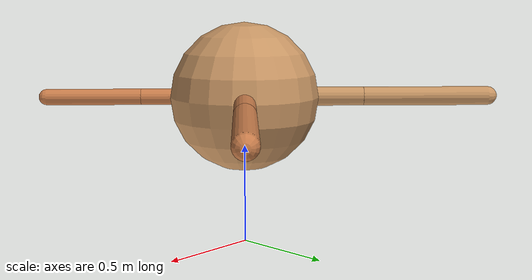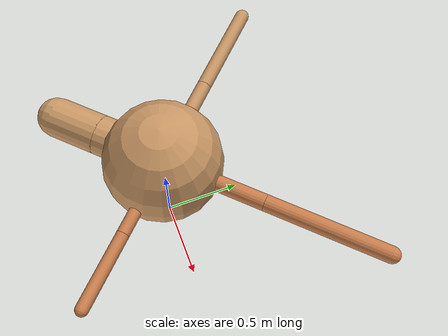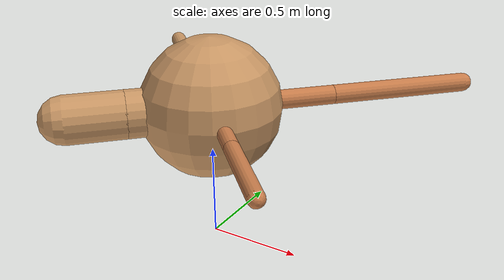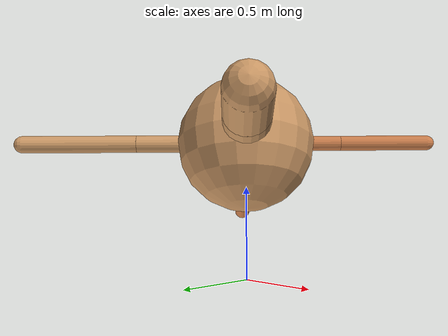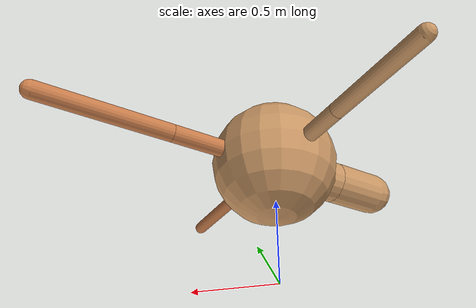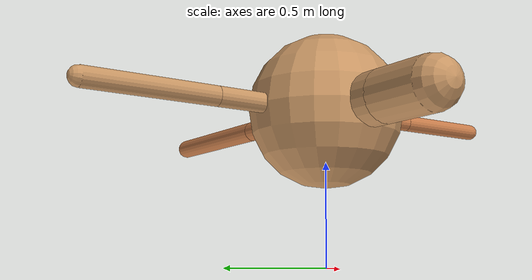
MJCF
<?xml version="1.0" ?>
<mujoco model="ant">

	<compiler angle="degree" coordinate="local" inertiafromgeom="true"/>

	<option integrator="RK4" timestep="0.01"/>

	<custom>

		<numeric data="0.0 0.0 0.55 1.0 0.0 0.0 0.0 0.0 1.0 0.0 -1.0 0.0 -1.0 0.0 1.0" name="init_qpos"/>

	</custom>

	<default>

		<joint armature="1" damping="1" limited="true"/>

		<geom conaffinity="0" condim="3" density="5.0" friction="1.5 0.1 0.1" margin="0.01" rgba="0.8 0.6 0.4 1"/>

	</default>

	<worldbody>

		<body name="torso" pos="0 0 0.75">

			<geom name="torso_geom" pos="0 0 0" size="0.3728842107614332" type="sphere"/>

			<!--joint armature="0" damping="0" limited="false" margin="0.01" name="root" pos="0 0 0" type="free"/-->

			<body name="front_left_leg" pos="0 0 0">

				<geom fromto="0 0 0 0.2 0.2 0" name="aux_1_geom" size="0.051590007375902795" type="capsule" rgba=".8 .5 .3 1"/>

				<body name="aux_1" pos="0.2 0.2 0">

					<joint axis="0 0 1" name="hip_1" pos="0.0 0.0 0.0" range="-40 40" type="hinge"/>

					<geom fromto="0 0 0 0.27184325749807575 0.27184325749807575 0" name="left_leg_geom" size="0.051590007375902795" type="capsule" rgba=".8 .5 .3 1"/>

					<body pos="0.27184325749807575 0.27184325749807575 0" name="front_left_foot">

						<joint axis="-1 1 0" name="ankle_1" pos="0.0 0.0 0.0" range="30 100" type="hinge"/>

						<geom fromto="0 0 0 0.5436865149961515 0.5436865149961515 0" name="left_ankle_geom" size="0.051590007375902795" type="capsule" rgba=".8 .5 .3 1"/>

					</body>

				</body>

			</body>

			<body name="front_right_leg" pos="0 0 0">

				<geom fromto="0 0 0 -0.2 0.2 0" name="aux_2_geom" size="0.04705520641955298" type="capsule"/>

				<body name="aux_2" pos="-0.2 0.2 0">

					<joint axis="0 0 1" name="hip_2" pos="0.0 0.0 0.0" range="-40 40" type="hinge"/>

					<geom fromto="0 0 0 -0.22343732015056572 0.22343732015056572 0" name="right_leg_geom" size="0.04705520641955298" type="capsule"/>

					<body pos="-0.22343732015056572 0.22343732015056572 0" name="front_right_foot">

						<joint axis="1 1 0" name="ankle_2" pos="0.0 0.0 0.0" range="-100 -30" type="hinge"/>

						<geom fromto="0 0 0 -0.44687464030113144 0.44687464030113144 0" name="right_ankle_geom" size="0.04705520641955298" type="capsule"/>

					</body>

				</body>

			</body>

			<body name="left_back_leg" pos="0 0 0">

				<geom fromto="0 0 0 -0.2 -0.2 0" name="aux_3_geom" size="0.1267260783006071" type="capsule"/>

				<body name="aux_3" pos="-0.2 -0.2 0">

					<joint axis="0 0 1" name="hip_3" pos="0.0 0.0 0.0" range="-40 40" type="hinge"/>

					<geom fromto="0 0 0 -0.10768344370858021 -0.10768344370858021 0" name="back_leg_geom" size="0.1267260783006071" type="capsule"/>

					<body pos="-0.10768344370858021 -0.10768344370858021 0" name="left_back_foot">

						<joint axis="-1 1 0" name="ankle_3" pos="0.0 0.0 0.0" range="-100 -30" type="hinge"/>

						<geom fromto="0 0 0 -0.21536688741716042 -0.21536688741716042 0" name="third_ankle_geom" size="0.1267260783006071" type="capsule"/>

					</body>

				</body>

			</body>

			<body name="right_back_leg" pos="0 0 0">

				<geom fromto="0 0 0 0.2 -0.2 0" name="aux_4_geom" size="0.04011721784472381" type="capsule" rgba=".8 .5 .3 1"/>

				<body name="aux_4" pos="0.2 -0.2 0">

					<joint axis="0 0 1" name="hip_4" pos="0.0 0.0 0.0" range="-40 40" type="hinge"/>

					<geom fromto="0 0 0 0.16606855050857594 -0.16606855050857594 0" name="rightback_leg_geom" size="0.04011721784472381" type="capsule" rgba=".8 .5 .3 1"/>

					<body pos="0.16606855050857594 -0.16606855050857594 0" name="right_back_foot">

						<joint axis="1 1 0" name="ankle_4" pos="0.0 0.0 0.0" range="30 100" type="hinge"/>

						<geom fromto="0 0 0 0.3321371010171519 -0.3321371010171519 0" name="fourth_ankle_geom" size="0.04011721784472381" type="capsule" rgba=".8 .5 .3 1"/>

					</body>

				</body>

			</body>

		</body>

	</worldbody>

	<actuator>

		<motor ctrllimited="true" ctrlrange="-1.0 1.0" joint="hip_4" gear="150"/>

		<motor ctrllimited="true" ctrlrange="-1.0 1.0" joint="ankle_4" gear="150"/>

		<motor ctrllimited="true" ctrlrange="-1.0 1.0" joint="hip_1" gear="150"/>

		<motor ctrllimited="true" ctrlrange="-1.0 1.0" joint="ankle_1" gear="150"/>

		<motor ctrllimited="true" ctrlrange="-1.0 1.0" joint="hip_2" gear="150"/>

		<motor ctrllimited="true" ctrlrange="-1.0 1.0" joint="ankle_2" gear="150"/>

		<motor ctrllimited="true" ctrlrange="-1.0 1.0" joint="hip_3" gear="150"/>

		<motor ctrllimited="true" ctrlrange="-1.0 1.0" joint="ankle_3" gear="150"/>

	</actuator>

</mujoco>
